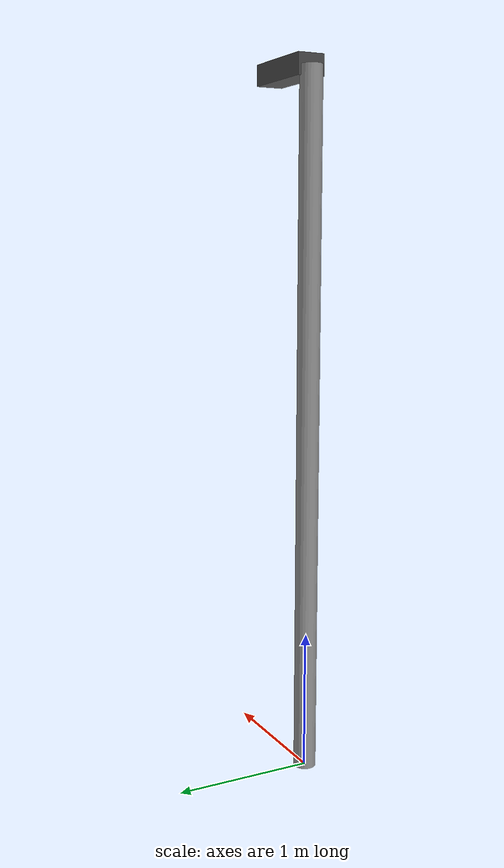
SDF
<?xml version="1.0" ?>
<sdf version="1.6">
  <model name="street_light">
    <static>true</static>
    <link name="link">
      <collision name="collision_post">
        <pose>0 0 2.5 0 0 0</pose>
        <geometry>
          <cylinder>
            <radius>0.08</radius>
            <length>5.0</length>
          </cylinder>
        </geometry>
      </collision>
      <visual name="visual_post">
        <pose>0 0 2.5 0 0 0</pose>
        <geometry>
          <cylinder>
            <radius>0.08</radius>
            <length>5.0</length>
          </cylinder>
        </geometry>
        <material>
          <script>
            <uri>file://media/materials/scripts/gazebo.material</uri>
            <name>Gazebo/Grey</name>
          </script>
        </material>
      </visual>
      <visual name="visual_head">
        <pose>0.3 0 5.0 0 0 0</pose>
        <geometry>
          <box>
            <size>0.6 0.2 0.15</size>
          </box>
        </geometry>
        <material>
          <script>
            <uri>file://media/materials/scripts/gazebo.material</uri>
            <name>Gazebo/DarkGrey</name>
          </script>
        </material>
      </visual>
      <light name="light_source" type="spot">
        <pose>0.5 0 4.8 0 1.5707 0</pose>
        <diffuse>0.8 0.8 0.5 1</diffuse>
        <specular>0.2 0.2 0.2 1</specular>
        <attenuation>
          <range>15</range>
          <constant>0.5</constant>
          <linear>0.05</linear>
          <quadratic>0.01</quadratic>
        </attenuation>
        <direction>0 0 -1</direction>
        <spot>
          <inner_angle>0.3</inner_angle>
          <outer_angle>0.8</outer_angle>
          <falloff>1.0</falloff>
        </spot>
        <cast_shadows>true</cast_shadows>
      </light>
    </link>
  </model>
</sdf>
